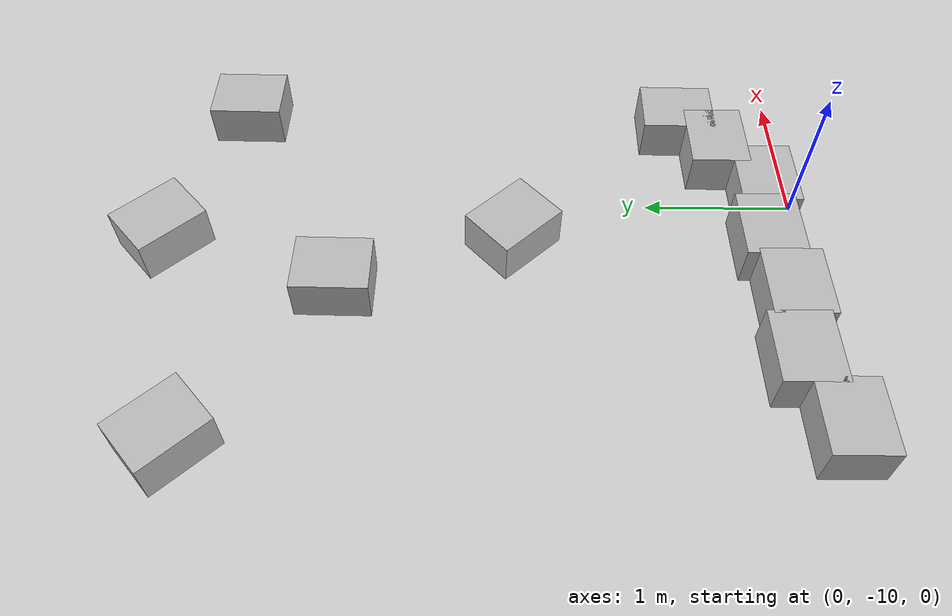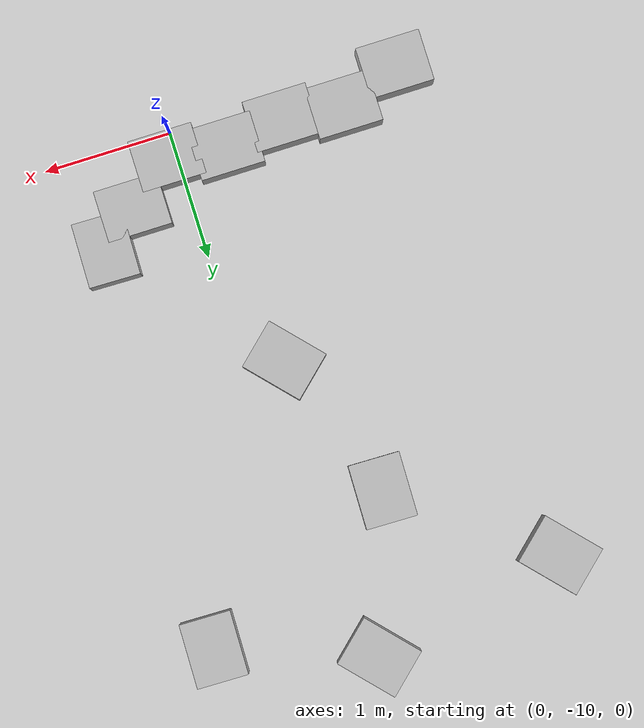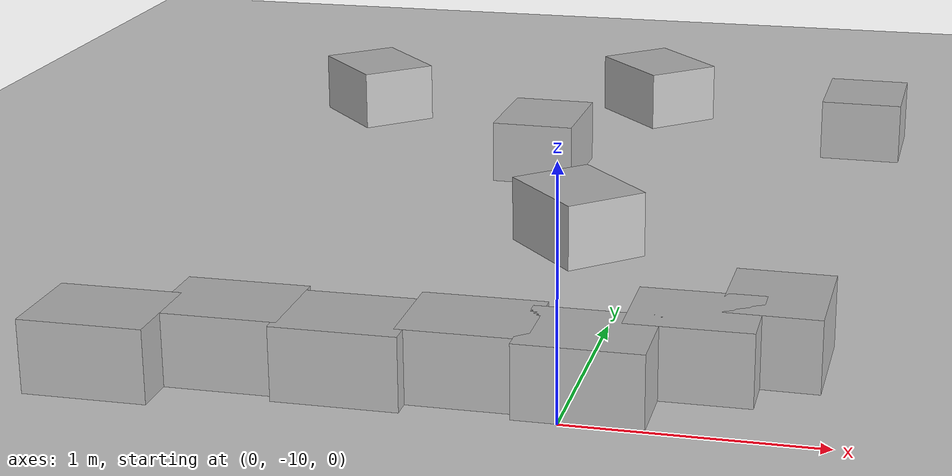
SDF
<sdf version="1.6">
 <world name="default">
  <model name="ground_plane">
   <static>1</static>
   <link name="link">
    <collision name="collision">
     <geometry><plane><normal>0 0 1</normal><size>100 100</size></plane></geometry>
     <surface>
      <contact><collide_bitmask>65535</collide_bitmask></contact>
      <friction><ode><mu>100</mu><mu2>50</mu2></ode></friction>
     </surface>
    </collision>
    <visual name="visual">
     <cast_shadows>0</cast_shadows>
     <geometry><plane><normal>0 0 1</normal><size>100 100</size></plane></geometry>
     <material>
      <script><uri>file://media/materials/scripts/gazebo.material</uri><name>Gazebo/Grey</name></script>
     </material>
    </visual>
   </link>
   <pose>0.215037 0.234206 0 0 -0 0</pose>
  </model>
  <model name="box_clone_3_clone_clone_clone_3_clone_clone_clone_0">
   <link name="cardboard_box_clone::link">
    <inertial>
     <mass>2</mass>
     <inertia>
      <ixx>0.0416667</ixx>
      <ixy>0</ixy>
      <ixz>0</ixz>
      <iyy>0.0566667</iyy>
      <iyz>0</iyz>
      <izz>0.0683333</izz>
     </inertia>
    </inertial>
    <visual name="visual">
     <pose>0 0 -0.15 0 -0 0</pose>
     <geometry>
      <mesh><uri>model://cardboard_box/meshes/cardboard_box.dae</uri><scale>1.25932 1.00745 0.755591</scale></mesh>
     </geometry>
    </visual>
    <collision name="collision">
     <geometry><box><size>0.5 0.4 0.3</size></box></geometry>
     <surface>
      <friction>
       <ode><mu>1</mu><mu2>1</mu2><fdir1>0 0 0</fdir1><slip1>0</slip1><slip2>0</slip2></ode>
       <torsional>
        <coefficient>1</coefficient>
        <patch_radius>0</patch_radius>
        <surface_radius>0</surface_radius>
        <use_patch_radius>1</use_patch_radius>
        <ode><slip>0</slip></ode>
       </torsional>
      </friction>
      <bounce><restitution_coefficient>0</restitution_coefficient><threshold>1e+06</threshold></bounce>
      <contact>
       <collide_without_contact>0</collide_without_contact>
       <collide_without_contact_bitmask>1</collide_without_contact_bitmask>
       <collide_bitmask>1</collide_bitmask>
       <ode>
        <soft_cfm>0</soft_cfm>
        <soft_erp>0.2</soft_erp>
        <kp>1e+07</kp>
        <kd>1</kd>
        <max_vel>0.1</max_vel>
        <min_depth>0.001</min_depth>
       </ode>
       <bullet>
        <split_impulse>1</split_impulse>
        <split_impulse_penetration_threshold>-0.01</split_impulse_penetration_threshold>
        <soft_cfm>0</soft_cfm>
        <soft_erp>0.2</soft_erp>
        <kp>1e+07</kp>
        <kd>1</kd>
       </bullet>
      </contact>
     </surface>
    </collision>
   </link>
   <static>1</static>
   <pose>-1.86034 -6.04029 0.149 0 -0 2.31083</pose>
  </model>
  <model name="box_clone_3_clone_2">
   <link name="cardboard_box_clone::link">
    <inertial>
     <mass>2</mass>
     <inertia>
      <ixx>0.0416667</ixx>
      <ixy>0</ixy>
      <ixz>0</ixz>
      <iyy>0.0566667</iyy>
      <iyz>0</iyz>
      <izz>0.0683333</izz>
     </inertia>
    </inertial>
    <visual name="visual">
     <pose>0 0 -0.15 0 -0 0</pose>
     <geometry>
      <mesh><uri>model://cardboard_box/meshes/cardboard_box.dae</uri><scale>1.25932 1.00745 0.755591</scale></mesh>
     </geometry>
    </visual>
    <collision name="collision">
     <geometry><box><size>0.5 0.4 0.3</size></box></geometry>
     <surface>
      <friction>
       <ode><mu>1</mu><mu2>1</mu2><fdir1>0 0 0</fdir1><slip1>0</slip1><slip2>0</slip2></ode>
       <torsional>
        <coefficient>1</coefficient>
        <patch_radius>0</patch_radius>
        <surface_radius>0</surface_radius>
        <use_patch_radius>1</use_patch_radius>
        <ode><slip>0</slip></ode>
       </torsional>
      </friction>
      <bounce><restitution_coefficient>0</restitution_coefficient><threshold>1e+06</threshold></bounce>
      <contact>
       <collide_without_contact>0</collide_without_contact>
       <collide_without_contact_bitmask>1</collide_without_contact_bitmask>
       <collide_bitmask>1</collide_bitmask>
       <ode>
        <soft_cfm>0</soft_cfm>
        <soft_erp>0.2</soft_erp>
        <kp>1e+07</kp>
        <kd>1</kd>
        <max_vel>0.1</max_vel>
        <min_depth>0.001</min_depth>
       </ode>
       <bullet>
        <split_impulse>1</split_impulse>
        <split_impulse_penetration_threshold>-0.01</split_impulse_penetration_threshold>
        <soft_cfm>0</soft_cfm>
        <soft_erp>0.2</soft_erp>
        <kp>1e+07</kp>
        <kd>1</kd>
       </bullet>
      </contact>
     </surface>
    </collision>
   </link>
   <static>1</static>
   <pose>0.840472 -6.1457 0.149 0 -0 1.55153</pose>
  </model>
  <model name="box_clone_3_clone_9">
   <link name="cardboard_box_clone::link">
    <inertial>
     <mass>2</mass>
     <inertia>
      <ixx>0.0416667</ixx>
      <ixy>0</ixy>
      <ixz>0</ixz>
      <iyy>0.0566667</iyy>
      <iyz>0</iyz>
      <izz>0.0683333</izz>
     </inertia>
    </inertial>
    <visual name="visual">
     <pose>0 0 -0.15 0 -0 0</pose>
     <geometry>
      <mesh><uri>model://cardboard_box/meshes/cardboard_box.dae</uri><scale>1.25932 1.00745 0.755591</scale></mesh>
     </geometry>
    </visual>
    <collision name="collision">
     <geometry><box><size>0.5 0.4 0.3</size></box></geometry>
     <surface>
      <friction>
       <ode><mu>1</mu><mu2>1</mu2><fdir1>0 0 0</fdir1><slip1>0</slip1><slip2>0</slip2></ode>
       <torsional>
        <coefficient>1</coefficient>
        <patch_radius>0</patch_radius>
        <surface_radius>0</surface_radius>
        <use_patch_radius>1</use_patch_radius>
        <ode><slip>0</slip></ode>
       </torsional>
      </friction>
      <bounce><restitution_coefficient>0</restitution_coefficient><threshold>1e+06</threshold></bounce>
      <contact>
       <collide_without_contact>0</collide_without_contact>
       <collide_without_contact_bitmask>1</collide_without_contact_bitmask>
       <collide_bitmask>1</collide_bitmask>
       <ode>
        <soft_cfm>0</soft_cfm>
        <soft_erp>0.2</soft_erp>
        <kp>1e+07</kp>
        <kd>1</kd>
        <max_vel>0.1</max_vel>
        <min_depth>0.001</min_depth>
       </ode>
       <bullet>
        <split_impulse>1</split_impulse>
        <split_impulse_penetration_threshold>-0.01</split_impulse_penetration_threshold>
        <soft_cfm>0</soft_cfm>
        <soft_erp>0.2</soft_erp>
        <kp>1e+07</kp>
        <kd>1</kd>
       </bullet>
      </contact>
     </surface>
    </collision>
   </link>
   <static>1</static>
   <pose>0.718459 -9.26594 0.149 0 -0 1.55153</pose>
  </model>
  <model name="box_clone_23">
   <link name="cardboard_box_clone::link">
    <inertial>
     <mass>2</mass>
     <inertia>
      <ixx>0.0416667</ixx>
      <ixy>0</ixy>
      <ixz>0</ixz>
      <iyy>0.0566667</iyy>
      <iyz>0</iyz>
      <izz>0.0683333</izz>
     </inertia>
    </inertial>
    <visual name="visual">
     <pose>0 0 -0.15 0 -0 0</pose>
     <geometry>
      <mesh><uri>model://cardboard_box/meshes/cardboard_box.dae</uri><scale>1.25932 1.00745 0.755591</scale></mesh>
     </geometry>
    </visual>
    <collision name="collision">
     <geometry><box><size>0.5 0.4 0.3</size></box></geometry>
     <surface>
      <friction>
       <ode><mu>1</mu><mu2>1</mu2><fdir1>0 0 0</fdir1><slip1>0</slip1><slip2>0</slip2></ode>
       <torsional>
        <coefficient>1</coefficient>
        <patch_radius>0</patch_radius>
        <surface_radius>0</surface_radius>
        <use_patch_radius>1</use_patch_radius>
        <ode><slip>0</slip></ode>
       </torsional>
      </friction>
      <bounce><restitution_coefficient>0</restitution_coefficient><threshold>1e+06</threshold></bounce>
      <contact>
       <collide_without_contact>0</collide_without_contact>
       <collide_without_contact_bitmask>1</collide_without_contact_bitmask>
       <collide_bitmask>1</collide_bitmask>
       <ode>
        <soft_cfm>0</soft_cfm>
        <soft_erp>0.2</soft_erp>
        <kp>1e+07</kp>
        <kd>1</kd>
        <max_vel>0.1</max_vel>
        <min_depth>0.001</min_depth>
       </ode>
       <bullet>
        <split_impulse>1</split_impulse>
        <split_impulse_penetration_threshold>-0.01</split_impulse_penetration_threshold>
        <soft_cfm>0</soft_cfm>
        <soft_erp>0.2</soft_erp>
        <kp>1e+07</kp>
        <kd>1</kd>
       </bullet>
      </contact>
     </surface>
    </collision>
   </link>
   <static>1</static>
   <pose>-1.78489 -9.95299 0.149 0 -0 0</pose>
  </model>
  <model name="box_clone_24">
   <link name="cardboard_box_clone::link">
    <inertial>
     <mass>2</mass>
     <inertia>
      <ixx>0.0416667</ixx>
      <ixy>0</ixy>
      <ixz>0</ixz>
      <iyy>0.0566667</iyy>
      <iyz>0</iyz>
      <izz>0.0683333</izz>
     </inertia>
    </inertial>
    <visual name="visual">
     <pose>0 0 -0.15 0 -0 0</pose>
     <geometry>
      <mesh><uri>model://cardboard_box/meshes/cardboard_box.dae</uri><scale>1.25932 1.00745 0.755591</scale></mesh>
     </geometry>
    </visual>
    <collision name="collision">
     <geometry><box><size>0.5 0.4 0.3</size></box></geometry>
     <surface>
      <friction>
       <ode><mu>1</mu><mu2>1</mu2><fdir1>0 0 0</fdir1><slip1>0</slip1><slip2>0</slip2></ode>
       <torsional>
        <coefficient>1</coefficient>
        <patch_radius>0</patch_radius>
        <surface_radius>0</surface_radius>
        <use_patch_radius>1</use_patch_radius>
        <ode><slip>0</slip></ode>
       </torsional>
      </friction>
      <bounce><restitution_coefficient>0</restitution_coefficient><threshold>1e+06</threshold></bounce>
      <contact>
       <collide_without_contact>0</collide_without_contact>
       <collide_without_contact_bitmask>1</collide_without_contact_bitmask>
       <collide_bitmask>1</collide_bitmask>
       <ode>
        <soft_cfm>0</soft_cfm>
        <soft_erp>0.2</soft_erp>
        <kp>1e+07</kp>
        <kd>1</kd>
        <max_vel>0.1</max_vel>
        <min_depth>0.001</min_depth>
       </ode>
       <bullet>
        <split_impulse>1</split_impulse>
        <split_impulse_penetration_threshold>-0.01</split_impulse_penetration_threshold>
        <soft_cfm>0</soft_cfm>
        <soft_erp>0.2</soft_erp>
        <kp>1e+07</kp>
        <kd>1</kd>
       </bullet>
      </contact>
     </surface>
    </collision>
   </link>
   <static>1</static>
   <pose>-1.32422 -9.77706 0.149 0 -0 0</pose>
  </model>
  <model name="box_clone_25">
   <link name="cardboard_box_clone::link">
    <inertial>
     <mass>2</mass>
     <inertia>
      <ixx>0.0416667</ixx>
      <ixy>0</ixy>
      <ixz>0</ixz>
      <iyy>0.0566667</iyy>
      <iyz>0</iyz>
      <izz>0.0683333</izz>
     </inertia>
    </inertial>
    <visual name="visual">
     <pose>0 0 -0.15 0 -0 0</pose>
     <geometry>
      <mesh><uri>model://cardboard_box/meshes/cardboard_box.dae</uri><scale>1.25932 1.00745 0.755591</scale></mesh>
     </geometry>
    </visual>
    <collision name="collision">
     <geometry><box><size>0.5 0.4 0.3</size></box></geometry>
     <surface>
      <friction>
       <ode><mu>1</mu><mu2>1</mu2><fdir1>0 0 0</fdir1><slip1>0</slip1><slip2>0</slip2></ode>
       <torsional>
        <coefficient>1</coefficient>
        <patch_radius>0</patch_radius>
        <surface_radius>0</surface_radius>
        <use_patch_radius>1</use_patch_radius>
        <ode><slip>0</slip></ode>
       </torsional>
      </friction>
      <bounce><restitution_coefficient>0</restitution_coefficient><threshold>1e+06</threshold></bounce>
      <contact>
       <collide_without_contact>0</collide_without_contact>
       <collide_without_contact_bitmask>1</collide_without_contact_bitmask>
       <collide_bitmask>1</collide_bitmask>
       <ode>
        <soft_cfm>0</soft_cfm>
        <soft_erp>0.2</soft_erp>
        <kp>1e+07</kp>
        <kd>1</kd>
        <max_vel>0.1</max_vel>
        <min_depth>0.001</min_depth>
       </ode>
       <bullet>
        <split_impulse>1</split_impulse>
        <split_impulse_penetration_threshold>-0.01</split_impulse_penetration_threshold>
        <soft_cfm>0</soft_cfm>
        <soft_erp>0.2</soft_erp>
        <kp>1e+07</kp>
        <kd>1</kd>
       </bullet>
      </contact>
     </surface>
    </collision>
   </link>
   <static>1</static>
   <pose>-0.844404 -9.82173 0.149 0 -0 0</pose>
  </model>
  <model name="box_clone_26">
   <link name="cardboard_box_clone::link">
    <inertial>
     <mass>2</mass>
     <inertia>
      <ixx>0.0416667</ixx>
      <ixy>0</ixy>
      <ixz>0</ixz>
      <iyy>0.0566667</iyy>
      <iyz>0</iyz>
      <izz>0.0683333</izz>
     </inertia>
    </inertial>
    <visual name="visual">
     <pose>0 0 -0.15 0 -0 0</pose>
     <geometry>
      <mesh><uri>model://cardboard_box/meshes/cardboard_box.dae</uri><scale>1.25932 1.00745 0.755591</scale></mesh>
     </geometry>
    </visual>
    <collision name="collision">
     <geometry><box><size>0.5 0.4 0.3</size></box></geometry>
     <surface>
      <friction>
       <ode><mu>1</mu><mu2>1</mu2><fdir1>0 0 0</fdir1><slip1>0</slip1><slip2>0</slip2></ode>
       <torsional>
        <coefficient>1</coefficient>
        <patch_radius>0</patch_radius>
        <surface_radius>0</surface_radius>
        <use_patch_radius>1</use_patch_radius>
        <ode><slip>0</slip></ode>
       </torsional>
      </friction>
      <bounce><restitution_coefficient>0</restitution_coefficient><threshold>1e+06</threshold></bounce>
      <contact>
       <collide_without_contact>0</collide_without_contact>
       <collide_without_contact_bitmask>1</collide_without_contact_bitmask>
       <collide_bitmask>1</collide_bitmask>
       <ode>
        <soft_cfm>0</soft_cfm>
        <soft_erp>0.2</soft_erp>
        <kp>1e+07</kp>
        <kd>1</kd>
        <max_vel>0.1</max_vel>
        <min_depth>0.001</min_depth>
       </ode>
       <bullet>
        <split_impulse>1</split_impulse>
        <split_impulse_penetration_threshold>-0.01</split_impulse_penetration_threshold>
        <soft_cfm>0</soft_cfm>
        <soft_erp>0.2</soft_erp>
        <kp>1e+07</kp>
        <kd>1</kd>
       </bullet>
      </contact>
     </surface>
    </collision>
   </link>
   <static>1</static>
   <pose>-0.379165 -9.74391 0.149 0 -0 0</pose>
  </model>
  <model name="box_clone_27">
   <link name="cardboard_box_clone::link">
    <inertial>
     <mass>2</mass>
     <inertia>
      <ixx>0.0416667</ixx>
      <ixy>0</ixy>
      <ixz>0</ixz>
      <iyy>0.0566667</iyy>
      <iyz>0</iyz>
      <izz>0.0683333</izz>
     </inertia>
    </inertial>
    <visual name="visual">
     <pose>0 0 -0.15 0 -0 0</pose>
     <geometry>
      <mesh><uri>model://cardboard_box/meshes/cardboard_box.dae</uri><scale>1.25932 1.00745 0.755591</scale></mesh>
     </geometry>
    </visual>
    <collision name="collision">
     <geometry><box><size>0.5 0.4 0.3</size></box></geometry>
     <surface>
      <friction>
       <ode><mu>1</mu><mu2>1</mu2><fdir1>0 0 0</fdir1><slip1>0</slip1><slip2>0</slip2></ode>
       <torsional>
        <coefficient>1</coefficient>
        <patch_radius>0</patch_radius>
        <surface_radius>0</surface_radius>
        <use_patch_radius>1</use_patch_radius>
        <ode><slip>0</slip></ode>
       </torsional>
      </friction>
      <bounce><restitution_coefficient>0</restitution_coefficient><threshold>1e+06</threshold></bounce>
      <contact>
       <collide_without_contact>0</collide_without_contact>
       <collide_without_contact_bitmask>1</collide_without_contact_bitmask>
       <collide_bitmask>1</collide_bitmask>
       <ode>
        <soft_cfm>0</soft_cfm>
        <soft_erp>0.2</soft_erp>
        <kp>1e+07</kp>
        <kd>1</kd>
        <max_vel>0.1</max_vel>
        <min_depth>0.001</min_depth>
       </ode>
       <bullet>
        <split_impulse>1</split_impulse>
        <split_impulse_penetration_threshold>-0.01</split_impulse_penetration_threshold>
        <soft_cfm>0</soft_cfm>
        <soft_erp>0.2</soft_erp>
        <kp>1e+07</kp>
        <kd>1</kd>
       </bullet>
      </contact>
     </surface>
    </collision>
   </link>
   <static>1</static>
   <pose>0.070947 -9.79323 0.149 0 -0 0</pose>
  </model>
  <model name="box_clone_28">
   <link name="cardboard_box_clone::link">
    <inertial>
     <mass>2</mass>
     <inertia>
      <ixx>0.0416667</ixx>
      <ixy>0</ixy>
      <ixz>0</ixz>
      <iyy>0.0566667</iyy>
      <iyz>0</iyz>
      <izz>0.0683333</izz>
     </inertia>
    </inertial>
    <visual name="visual">
     <pose>0 0 -0.15 0 -0 0</pose>
     <geometry>
      <mesh><uri>model://cardboard_box/meshes/cardboard_box.dae</uri><scale>1.25932 1.00745 0.755591</scale></mesh>
     </geometry>
    </visual>
    <collision name="collision">
     <geometry><box><size>0.5 0.4 0.3</size></box></geometry>
     <surface>
      <friction>
       <ode><mu>1</mu><mu2>1</mu2><fdir1>0 0 0</fdir1><slip1>0</slip1><slip2>0</slip2></ode>
       <torsional>
        <coefficient>1</coefficient>
        <patch_radius>0</patch_radius>
        <surface_radius>0</surface_radius>
        <use_patch_radius>1</use_patch_radius>
        <ode><slip>0</slip></ode>
       </torsional>
      </friction>
      <bounce><restitution_coefficient>0</restitution_coefficient><threshold>1e+06</threshold></bounce>
      <contact>
       <collide_without_contact>0</collide_without_contact>
       <collide_without_contact_bitmask>1</collide_without_contact_bitmask>
       <collide_bitmask>1</collide_bitmask>
       <ode>
        <soft_cfm>0</soft_cfm>
        <soft_erp>0.2</soft_erp>
        <kp>1e+07</kp>
        <kd>1</kd>
        <max_vel>0.1</max_vel>
        <min_depth>0.001</min_depth>
       </ode>
       <bullet>
        <split_impulse>1</split_impulse>
        <split_impulse_penetration_threshold>-0.01</split_impulse_penetration_threshold>
        <soft_cfm>0</soft_cfm>
        <soft_erp>0.2</soft_erp>
        <kp>1e+07</kp>
        <kd>1</kd>
       </bullet>
      </contact>
     </surface>
    </collision>
   </link>
   <static>1</static>
   <pose>0.431255 -9.50687 0.149 0 -0 0</pose>
  </model>
  <model name="box_clone_3_clone_clone_clone_3_clone_clone_clone_2">
   <link name="cardboard_box_clone::link">
    <inertial>
     <mass>2</mass>
     <inertia>
      <ixx>0.0416667</ixx>
      <ixy>0</ixy>
      <ixz>0</ixz>
      <iyy>0.0566667</iyy>
      <iyz>0</iyz>
      <izz>0.0683333</izz>
     </inertia>
    </inertial>
    <visual name="visual">
     <pose>0 0 -0.15 0 -0 0</pose>
     <geometry>
      <mesh><uri>model://cardboard_box/meshes/cardboard_box.dae</uri><scale>1.25932 1.00745 0.755591</scale></mesh>
     </geometry>
    </visual>
    <collision name="collision">
     <geometry><box><size>0.5 0.4 0.3</size></box></geometry>
     <surface>
      <friction>
       <ode><mu>1</mu><mu2>1</mu2><fdir1>0 0 0</fdir1><slip1>0</slip1><slip2>0</slip2></ode>
       <torsional>
        <coefficient>1</coefficient>
        <patch_radius>0</patch_radius>
        <surface_radius>0</surface_radius>
        <use_patch_radius>1</use_patch_radius>
        <ode><slip>0</slip></ode>
       </torsional>
      </friction>
      <bounce><restitution_coefficient>0</restitution_coefficient><threshold>1e+06</threshold></bounce>
      <contact>
       <collide_without_contact>0</collide_without_contact>
       <collide_without_contact_bitmask>1</collide_without_contact_bitmask>
       <collide_bitmask>1</collide_bitmask>
       <ode>
        <soft_cfm>0</soft_cfm>
        <soft_erp>0.2</soft_erp>
        <kp>1e+07</kp>
        <kd>1</kd>
        <max_vel>0.1</max_vel>
        <min_depth>0.001</min_depth>
       </ode>
       <bullet>
        <split_impulse>1</split_impulse>
        <split_impulse_penetration_threshold>-0.01</split_impulse_penetration_threshold>
        <soft_cfm>0</soft_cfm>
        <soft_erp>0.2</soft_erp>
        <kp>1e+07</kp>
        <kd>1</kd>
       </bullet>
      </contact>
     </surface>
    </collision>
   </link>
   <static>1</static>
   <pose>-0.316135 -8.06227 0.149 0 -0 2.31083</pose>
  </model>
  <model name="box_clone_3_clone_clone_clone_3_clone_clone_clone_1">
   <link name="cardboard_box_clone::link">
    <inertial>
     <mass>2</mass>
     <inertia>
      <ixx>0.0416667</ixx>
      <ixy>0</ixy>
      <ixz>0</ixz>
      <iyy>0.0566667</iyy>
      <iyz>0</iyz>
      <izz>0.0683333</izz>
     </inertia>
    </inertial>
    <visual name="visual">
     <pose>0 0 -0.15 0 -0 0</pose>
     <geometry>
      <mesh><uri>model://cardboard_box/meshes/cardboard_box.dae</uri><scale>1.25932 1.00745 0.755591</scale></mesh>
     </geometry>
    </visual>
    <collision name="collision">
     <geometry><box><size>0.5 0.4 0.3</size></box></geometry>
     <surface>
      <friction>
       <ode><mu>1</mu><mu2>1</mu2><fdir1>0 0 0</fdir1><slip1>0</slip1><slip2>0</slip2></ode>
       <torsional>
        <coefficient>1</coefficient>
        <patch_radius>0</patch_radius>
        <surface_radius>0</surface_radius>
        <use_patch_radius>1</use_patch_radius>
        <ode><slip>0</slip></ode>
       </torsional>
      </friction>
      <bounce><restitution_coefficient>0</restitution_coefficient><threshold>1e+06</threshold></bounce>
      <contact>
       <collide_without_contact>0</collide_without_contact>
       <collide_without_contact_bitmask>1</collide_without_contact_bitmask>
       <collide_bitmask>1</collide_bitmask>
       <ode>
        <soft_cfm>0</soft_cfm>
        <soft_erp>0.2</soft_erp>
        <kp>1e+07</kp>
        <kd>1</kd>
        <max_vel>0.1</max_vel>
        <min_depth>0.001</min_depth>
       </ode>
       <bullet>
        <split_impulse>1</split_impulse>
        <split_impulse_penetration_threshold>-0.01</split_impulse_penetration_threshold>
        <soft_cfm>0</soft_cfm>
        <soft_erp>0.2</soft_erp>
        <kp>1e+07</kp>
        <kd>1</kd>
       </bullet>
      </contact>
     </surface>
    </collision>
   </link>
   <static>1</static>
   <pose>-0.33021 -5.71784 0.149 0 -0 2.31083</pose>
  </model>
  <model name="box_clone_3_clone_clone_15">
   <link name="cardboard_box_clone::link">
    <inertial>
     <mass>2</mass>
     <inertia>
      <ixx>0.0416667</ixx>
      <ixy>0</ixy>
      <ixz>0</ixz>
      <iyy>0.0566667</iyy>
      <iyz>0</iyz>
      <izz>0.0683333</izz>
     </inertia>
    </inertial>
    <visual name="visual">
     <pose>0 0 -0.15 0 -0 0</pose>
     <geometry>
      <mesh><uri>model://cardboard_box/meshes/cardboard_box.dae</uri><scale>1.25932 1.00745 0.755591</scale></mesh>
     </geometry>
    </visual>
    <collision name="collision">
     <geometry><box><size>0.5 0.4 0.3</size></box></geometry>
     <surface>
      <friction>
       <ode><mu>1</mu><mu2>1</mu2><fdir1>0 0 0</fdir1><slip1>0</slip1><slip2>0</slip2></ode>
       <torsional>
        <coefficient>1</coefficient>
        <patch_radius>0</patch_radius>
        <surface_radius>0</surface_radius>
        <use_patch_radius>1</use_patch_radius>
        <ode><slip>0</slip></ode>
       </torsional>
      </friction>
      <bounce><restitution_coefficient>0</restitution_coefficient><threshold>1e+06</threshold></bounce>
      <contact>
       <collide_without_contact>0</collide_without_contact>
       <collide_without_contact_bitmask>1</collide_without_contact_bitmask>
       <collide_bitmask>1</collide_bitmask>
       <ode>
        <soft_cfm>0</soft_cfm>
        <soft_erp>0.2</soft_erp>
        <kp>1e+07</kp>
        <kd>1</kd>
        <max_vel>0.1</max_vel>
        <min_depth>0.001</min_depth>
       </ode>
       <bullet>
        <split_impulse>1</split_impulse>
        <split_impulse_penetration_threshold>-0.01</split_impulse_penetration_threshold>
        <soft_cfm>0</soft_cfm>
        <soft_erp>0.2</soft_erp>
        <kp>1e+07</kp>
        <kd>1</kd>
       </bullet>
      </contact>
     </surface>
    </collision>
   </link>
   <static>1</static>
   <pose>-0.729935 -6.90395 0.149 0 -0 1.55153</pose>
  </model>
 </world>
</sdf>
